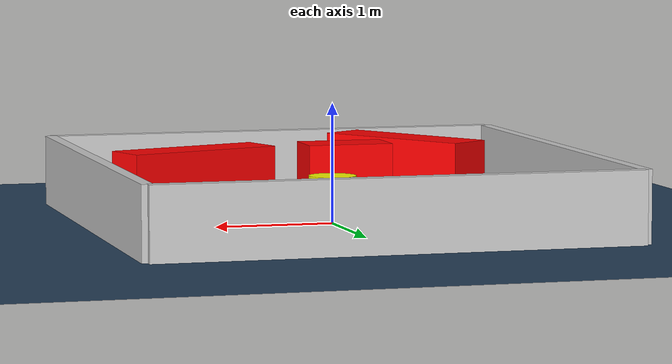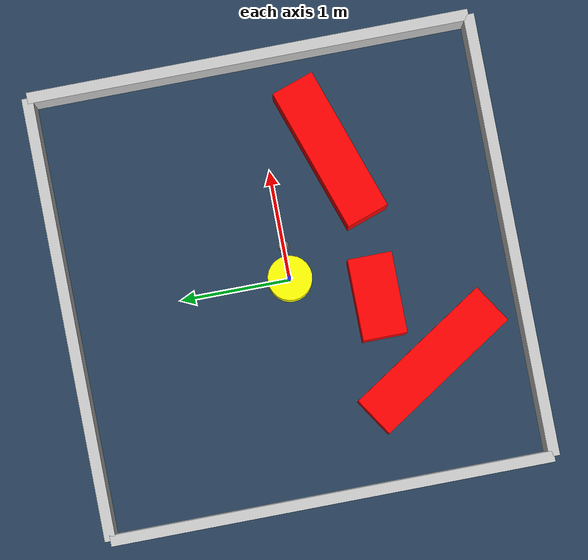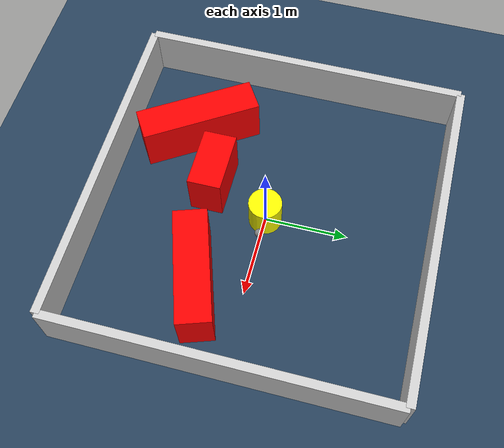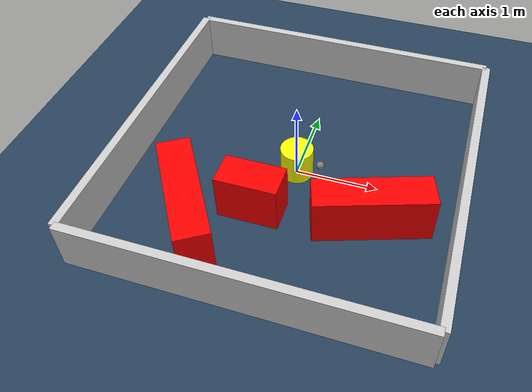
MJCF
<?xml version="1.0" ?>
<mujoco model="generated_environment">
  <option timestep="0.01" integrator="RK4" cone="elliptic"/>
  <default>
    <geom density="1"/>
  </default>
  <asset>
    <texture builtin="gradient" height="3072" rgb1="0.3 0.5 0.7" rgb2="0 0 0" type="skybox" width="512"/>
    <texture builtin="checker" height="300" mark="edge" markrgb="0.8 0.8 0.8" name="groundplane" rgb1="0.2 0.3 0.4" rgb2="0.1 0.2 0.3" type="2d" width="300"/>
    <material name="groundplane" reflectance="0.2" texrepeat="5 5" texture="groundplane" texuniform="true"/>
    <material name="robot" rgba="0.0 1.0 0.0 1"/>
  </asset>
  <worldbody>
    <light dir="0 0 -1" directional="true" pos="0 0 1.5"/>
    <geom condim="4" friction="1.0 0.005 0.001" material="groundplane" name="floor" size="0 0 0.05" type="plane"/>
    <body name="walls">
      <geom name="wall_1" condim="4" pos="-2.0 0.0 0.3" rgba="0.800000011920929 0.800000011920929 0.800000011920929 1.0" size="0.05 2.0 0.3" type="box"/>
      <geom name="wall_2" condim="4" pos="2.0 0.0 0.3" rgba="0.800000011920929 0.800000011920929 0.800000011920929 1.0" size="0.05 2.0 0.3" type="box"/>
      <geom name="wall_3" condim="4" pos="0.0 -2.0 0.3" rgba="0.800000011920929 0.800000011920929 0.800000011920929 1.0" size="2.0 0.05 0.3" type="box"/>
      <geom name="wall_4" condim="4" pos="0.0 2.0 0.3" rgba="0.800000011920929 0.800000011920929 0.800000011920929 1.0" size="2.0 0.05 0.3" type="box"/>
    </body>
    <body name="robot">
      <joint name="joint_x" type="slide" pos="0 0 0" axis="1 0 0"/>
      <joint name="joint_y" type="slide" pos="0 0 0" axis="0 1 0"/>
      <geom name="robot" type="sphere" pos="0.3 0.0 0.2" size="0.05" mass="5." friction="1.0 0.005 0.0001" condim="4" rgba="0.5 0.5 0.5 1.0"/>
      <site name="sensor_ball"/>
    </body>
    <body name="obstacle_movable_1">
      <geom name="obstacle_movable_1" condim="4" pos="0.0 0.0 0.2" euler="0 0 0.0" friction="1.0 0.005 0.001" rgba="1.0 1.0 0.0 1.0" size="0.2 0.2 0.0" type="cylinder" mass="0.1"/>
      <joint type="free"/>
    </body>
    <body name="obstacle_2_static">
      <geom name="obstacle_2_static" condim="4" pos="-0.9669750583357042 -1.1063186055645962 0.3" euler="0 0 302.95489542877465" friction="1.0 0.005 0.001" rgba="1 0 0 1" size="0.7294050035939863 0.2 0.3" type="box"/>
    </body>
    <body name="obstacle_3_static">
      <geom name="obstacle_3_static" condim="4" pos="-0.31312632642675453 -0.7298927223316318 0.3" euler="0 0 180.22277741136034" friction="1.0 0.005 0.001" rgba="1 0 0 1" size="0.3664788809776141 0.2 0.3" type="box"/>
    </body>
    <body name="obstacle_4_static">
      <geom name="obstacle_4_static" condim="4" pos="1.0476802582944051 -0.5629094375323387 0.3" euler="0 0 198.8230757983477" friction="1.0 0.005 0.001" rgba="1 0 0 1" size="0.680241873689717 0.2 0.3" type="box"/>
    </body>
  </worldbody>
  <actuator>
    <motor name="actuator_x" joint="joint_x" gear="1" ctrlrange="-1 1"/>
    <motor name="actuator_y" joint="joint_y" gear="1" ctrlrange="-1 1"/>
  </actuator>
</mujoco>
